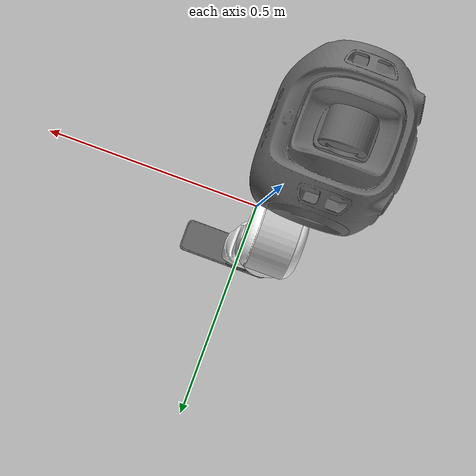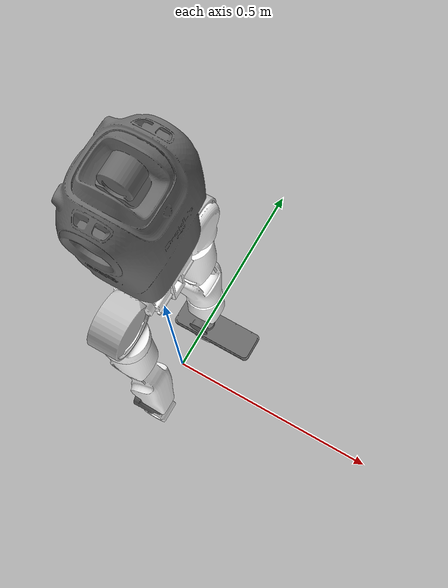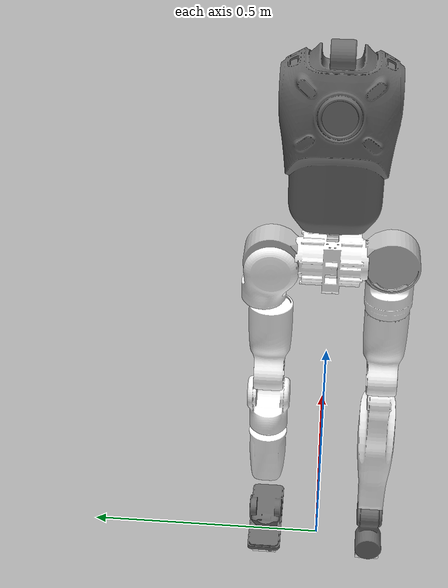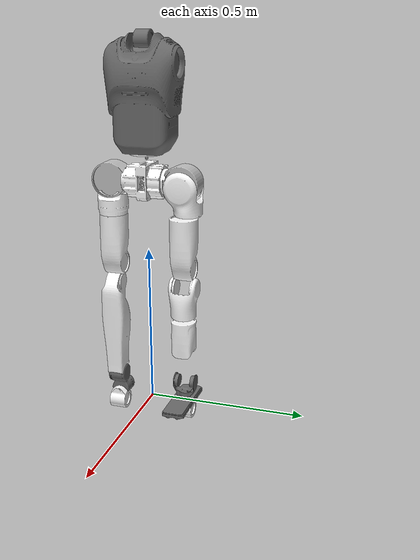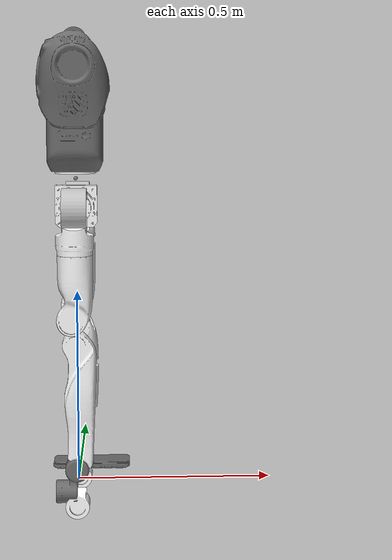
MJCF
<mujoco model="E1_1114_V2">
  <compiler angle="radian" meshdir="./meshes/"/>
  <statistic meansize="0.144785" extent="1.23314" center="0.025392 2.0634e-05 -0.245975"/>
  <default>
    <joint damping="0.1" armature="0.01" frictionloss="0.1"/>
  </default>
  <asset>
    <mesh name="pelvis" content_type="model/stl" file="pelvis.STL"/>
    <mesh name="left_hip_pitch_link" content_type="model/stl" file="left_hip_pitch_link.STL"/>
    <mesh name="left_hip_roll_link" content_type="model/stl" file="left_hip_roll_link.STL"/>
    <mesh name="left_hip_yaw_link" content_type="model/stl" file="left_hip_yaw_link.STL"/>
    <mesh name="left_knee_link" content_type="model/stl" file="left_knee_link.STL"/>
    <mesh name="left_ankle_pitch_link" content_type="model/stl" file="left_ankle_pitch_link.STL"/>
    <mesh name="left_ankle_roll_link" content_type="model/stl" file="left_ankle_roll_link.STL"/>
    <mesh name="right_hip_pitch_link" content_type="model/stl" file="right_hip_pitch_link.STL"/>
    <mesh name="right_hip_roll_link" content_type="model/stl" file="right_hip_roll_link.STL"/>
    <mesh name="right_hip_yaw_link" content_type="model/stl" file="right_hip_yaw_link.STL"/>
    <mesh name="right_knee_link" content_type="model/stl" file="right_knee_link.STL"/>
    <mesh name="right_ankle_pitch_link" content_type="model/stl" file="right_ankle_pitch_link.STL"/>
    <mesh name="right_ankle_roll_link" content_type="model/stl" file="right_ankle_roll_link.STL"/>
    <mesh name="waist_yaw_link" content_type="model/stl" file="waist_yaw_link.STL"/>
    <mesh name="torso_link" content_type="model/stl" file="torso_link.STL"/>
  </asset>

  <worldbody>
    <body name="pelvis" pos="0 0 0.72">
      <inertial pos="-1.8273e-07 2.9782e-07 0.013661" quat="1 1.39935e-05 5.54411e-06 0.000316733" mass="2" diaginertia="0.0041564 0.0040309 0.0033559"/>
      <joint name="pelvis" type="free" limited="false" actuatorfrclimited="false"/>
      <geom type="mesh" contype="0" conaffinity="0" group="1" density="0" rgba="1 1 1 1" mesh="pelvis"/>
      <geom type="mesh" rgba="1 1 1 1" mesh="pelvis"/>
      <site name="imu" pos="0 0 0.07"/>
      <body name="left_hip_pitch_link" pos="0 0.0575 0">
        <inertial pos="1.5245e-07 0.040781 -0.0095605" quat="0.592228 0.386357 -0.386352 0.592222" mass="0.145" diaginertia="0.000317824 0.00026988 0.000219246"/>
        <joint name="left_hip_pitch_joint" pos="0 0 0" axis="0 1 0" range="-2.7053 2.7053" actuatorfrcrange="-60 60"/>
        <geom type="mesh" contype="0" conaffinity="0" group="1" density="0" rgba="0.75294 0.75294 0.75294 1" mesh="left_hip_pitch_link"/>
        <body name="left_hip_roll_link" pos="0 0.0575 -0.015">
          <inertial pos="6.638e-08 -8.1233e-10 -0.040601" quat="0.707107 0.707107 2.95663e-05 -2.50888e-05" mass="1.39" diaginertia="0.00062768 0.00061445 0.00050845"/>
          <joint name="left_hip_roll_joint" pos="0 0 0" axis="1 0 0" range="-0.5236 3.1416" actuatorfrcrange="-36 36"/>
          <geom type="mesh" contype="0" conaffinity="0" group="1" density="0" rgba="1 1 1 1" mesh="left_hip_roll_link"/>
          <body name="left_hip_yaw_link" pos="0 0 -0.098">
            <inertial pos="0.003213 1.3339e-07 -0.10201" quat="0.706677 -0.0261198 -0.0261146 0.706572" mass="2.32" diaginertia="0.0088179 0.00853858 0.00259582"/>
            <joint name="left_hip_yaw_joint" pos="0 0 0" axis="0 0 1" range="-2.0944 2.0944" actuatorfrcrange="-36 36"/>
            <geom type="mesh" contype="0" conaffinity="0" group="1" density="0" rgba="1 1 1 1" mesh="left_hip_yaw_link"/>
            <geom type="mesh" rgba="1 1 1 1" mesh="left_hip_yaw_link"/>
            <body name="left_knee_link" pos="0 0 -0.222">
              <inertial pos="0.010928 5.3766e-06 -0.1336" quat="0.707173 0.000299726 0.000294909 0.70704" mass="0.785" diaginertia="0.010376 0.01028 0.000978033"/>
              <joint name="left_knee_joint" pos="0 0 0" axis="0 1 0" range="0 2.2689" actuatorfrcrange="-36 36"/>
              <geom type="mesh" contype="0" conaffinity="0" group="1" density="0" rgba="1 1 1 1" mesh="left_knee_link"/>
              <body name="left_ankle_pitch_link" pos="0 0 -0.32">
                <inertial pos="-0.013253 1.2837e-08 -0.029421" quat="0.690572 0.15202 0.15202 0.690572" mass="0.597" diaginertia="0.0003944 0.000374275 0.000108785"/>
                <joint name="left_ankle_pitch_joint" pos="0 0 0" axis="0 1 0" range="-0.5236 0.5236" actuatorfrcrange="-36 36"/>
                <geom type="mesh" contype="0" conaffinity="0" group="1" density="0" rgba="0.41961 0.41961 0.41961 1" mesh="left_ankle_pitch_link"/>
                <geom type="mesh" rgba="0.41961 0.41961 0.41961 1" mesh="left_ankle_pitch_link"/>
                <body name="left_ankle_roll_link" pos="0 0 -0.06">
                  <inertial pos="0.028459 4.6408e-07 -0.016825" quat="2.67678e-06 0.71048 -1.23825e-05 0.703717" mass="0.294" diaginertia="0.0014028 0.0013074 0.000296879"/>
                  <joint name="left_ankle_roll_joint" pos="0 0 0" axis="1 0 0" range="-1.5708 1.5708" actuatorfrcrange="-14 14"/>
                  <geom type="mesh" contype="0" conaffinity="0" group="1" density="0" rgba="1 1 1 1" mesh="left_ankle_roll_link"/>
                  <geom type="mesh" rgba="1 1 1 1" mesh="left_ankle_roll_link"/>
                </body>
              </body>
            </body>
          </body>
        </body>
      </body>
      <body name="right_hip_pitch_link" pos="0 -0.0575 0">
        <inertial pos="-1.5244e-07 -0.040781 -0.0095605" quat="0.386352 0.592222 -0.592228 0.386357" mass="0.145" diaginertia="0.000317824 0.00026988 0.000219246"/>
        <joint name="right_hip_pitch_joint" pos="0 0 0" axis="0 1 0" range="-2.7053 2.7053" actuatorfrcrange="-60 60"/>
        <geom type="mesh" contype="0" conaffinity="0" group="1" density="0" rgba="0.75294 0.75294 0.75294 1" mesh="right_hip_pitch_link"/>
        <body name="right_hip_roll_link" pos="0 -0.0575 -0.015">
          <inertial pos="6.638e-08 -8.1233e-10 -0.040601" quat="0.707107 0.707107 2.95663e-05 -2.50888e-05" mass="1.39" diaginertia="0.00062768 0.00061445 0.00050845"/>
          <joint name="right_hip_roll_joint" pos="0 0 0" axis="1 0 0" range="-2.618 0.1745" actuatorfrcrange="-36 36"/>
          <geom type="mesh" contype="0" conaffinity="0" group="1" density="0" rgba="1 1 1 1" mesh="right_hip_roll_link"/>
          <body name="right_hip_yaw_link" pos="0 0 -0.098">
            <inertial pos="0.003213 1.3325e-07 -0.10201" quat="0.706677 -0.0261198 -0.0261146 0.706572" mass="2.32" diaginertia="0.0088179 0.00853858 0.00259582"/>
            <joint name="right_hip_yaw_joint" pos="0 0 0" axis="0 0 1" range="-2.0944 2.0944" actuatorfrcrange="-36 36"/>
            <geom type="mesh" contype="0" conaffinity="0" group="1" density="0" rgba="1 1 1 1" mesh="right_hip_yaw_link"/>
            <geom type="mesh" rgba="1 1 1 1" mesh="right_hip_yaw_link"/>
            <body name="right_knee_link" pos="0 0 -0.222">
              <inertial pos="0.010928 5.3656e-06 -0.1336" quat="0.707173 0.000299684 0.000294943 0.707041" mass="0.785" diaginertia="0.010376 0.01028 0.000978033"/>
              <joint name="right_knee_joint" pos="0 0 0" axis="0 1 0" range="0 2.2689" actuatorfrcrange="-36 36"/>
              <geom type="mesh" contype="0" conaffinity="0" group="1" density="0" rgba="1 1 1 1" mesh="right_knee_link"/>
              <body name="right_ankle_pitch_link" pos="0 0 -0.32">
                <inertial pos="-0.013253 1.2837e-08 -0.029421" quat="0.690572 0.15202 0.15202 0.690572" mass="0.597" diaginertia="0.0003944 0.000374275 0.000108785"/>
                <joint name="right_ankle_pitch_joint" pos="0 0 0" axis="0 1 0" range="-0.5236 0.5236" actuatorfrcrange="-36 36"/>
                <geom type="mesh" contype="0" conaffinity="0" group="1" density="0" rgba="0.41961 0.41961 0.41961 1" mesh="right_ankle_pitch_link"/>
                <geom type="mesh" rgba="0.41961 0.41961 0.41961 1" mesh="right_ankle_pitch_link"/>
                <body name="right_ankle_roll_link" pos="0 0 -0.06">
                  <inertial pos="0.028459 4.6474e-07 -0.016825" quat="2.68849e-06 0.71048 -1.23679e-05 0.703717" mass="0.294" diaginertia="0.0014028 0.0013074 0.000296879"/>
                  <joint name="right_ankle_roll_joint" pos="0 0 0" axis="1 0 0" range="-1.5708 1.5708" actuatorfrcrange="-14 14"/>
                  <geom type="mesh" contype="0" conaffinity="0" group="1" density="0" rgba="1 1 1 1" mesh="right_ankle_roll_link"/>
                  <geom type="mesh" rgba="1 1 1 1" mesh="right_ankle_roll_link"/>
                </body>
              </body>
            </body>
          </body>
        </body>
      </body>
      <body name="waist_yaw_link" pos="0 0 0.111">
        <inertial pos="-0.000850543 4.00141e-06 0.0758804" quat="0.999995 -2.65946e-05 -0.00321218 -4.71382e-05" mass="5.94" diaginertia="0.0208024 0.0185606 0.0138026"/>
        <joint name="waist_yaw_joint" pos="0 0 0" axis="0 0 1" range="-1.5708 1.5708" actuatorfrcrange="-60 60"/>
        <geom type="mesh" contype="0" conaffinity="0" group="1" density="0" rgba="1 1 1 1" mesh="waist_yaw_link"/>
        <geom type="mesh" rgba="1 1 1 1" mesh="waist_yaw_link"/>
        <geom type="mesh" contype="0" conaffinity="0" group="1" density="0" rgba="0.41961 0.41961 0.41961 1" mesh="torso_link"/>
        <geom type="mesh" rgba="0.41961 0.41961 0.41961 1" mesh="torso_link"/>
      </body>
    </body>
  </worldbody>
    <actuator>
    <motor name="left_hip_pitch_joint"     joint="left_hip_pitch_joint"     />
    <motor name="left_hip_roll_joint"      joint="left_hip_roll_joint"      />
    <motor name="left_hip_yaw_joint"       joint="left_hip_yaw_joint"       />
    <motor name="left_knee_joint"          joint="left_knee_joint"    />
    <motor name="left_ankle_pitch_joint"   joint="left_ankle_pitch_joint"   />
    <motor name="left_ankle_roll_joint"    joint="left_ankle_roll_joint"   />

    <motor name="right_hip_pitch_joint"     joint="right_hip_pitch_joint"     />
    <motor name="right_hip_roll_joint"      joint="right_hip_roll_joint"      />
    <motor name="right_hip_yaw_joint"       joint="right_hip_yaw_joint"       />
    <motor name="right_knee_joint"          joint="right_knee_joint"    />
    <motor name="right_ankle_pitch_joint"   joint="right_ankle_pitch_joint"   />
    <motor name="right_ankle_roll_joint"    joint="right_ankle_roll_joint"   />
    <motor name="waist_yaw_joint"           joint="waist_yaw_joint"   />
  </actuator>
  <sensor>
    <!-- 身体的的姿态 -->
    <gyro          name="gyro"    site='imu' noise='0.005' cutoff='34.9'/>
    <accelerometer name="acc"     site='imu' noise='0.005' cutoff='157'/>
    <framequat     name='bq'      objtype='site' noise='0.001' objname='imu'/>
    <framelinvel   name="blv"  objtype='site' objname='imu'/>
  </sensor>
</mujoco>
